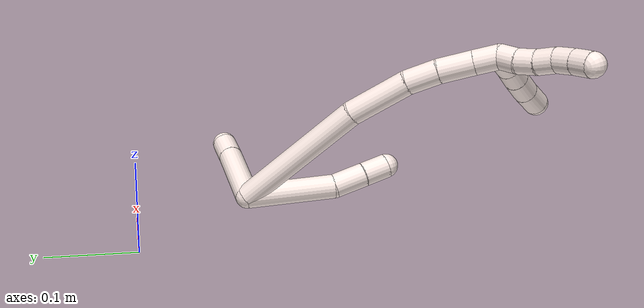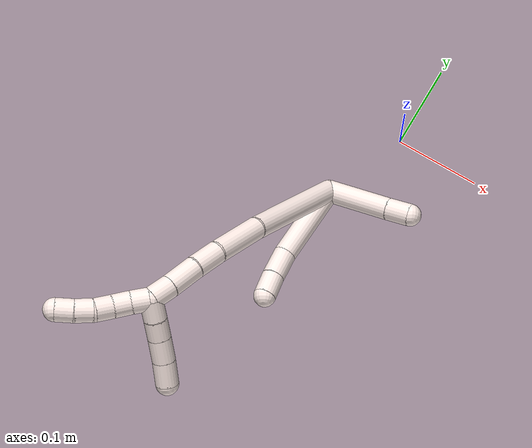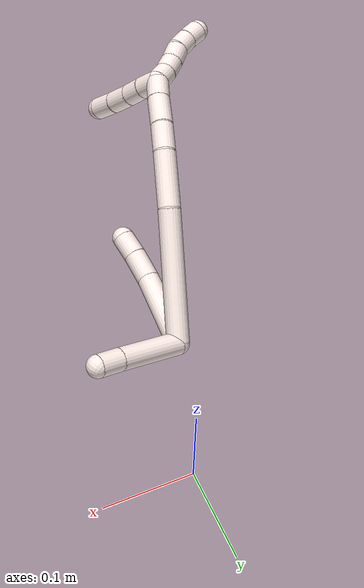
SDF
<sdf version="1.7">
 <world name="default">
  <model name="11">
   <static>0</static>
   <link name="11">
    <collision name="collision-cylinder-e_1_2_8">
     <pose>-0.020733 -0.009858 0.039236 0.246161 -0.47359 -0.059688</pose>
     <geometry><cylinder><radius>0.0125</radius><length>0.090918</length></cylinder></geometry>
     <surface>
      <friction><ode><mu>1.16</mu><mu2>1.16</mu2><slip1>0</slip1><slip2>0</slip2></ode></friction>
      <contact><ode><kp>1e+06</kp><kd>1</kd><max_vel>0</max_vel><min_depth>0.001</min_depth></ode></contact>
     </surface>
    </collision>
    <visual name="visual-cylinder-e_1_2_8">
     <pose>-0.020733 -0.009858 0.039236 0.246161 -0.47359 -0.059688</pose>
     <geometry><cylinder><radius>0.0125</radius><length>0.090918</length></cylinder></geometry>
     <material><ambient>1 0.933333 0.909804 1</ambient></material>
    </visual>
    <collision name="collision-cylinder-e_2_8_9">
     <pose>-0.048344 -0.019065 0.093536 -0.043249 -0.427924 0.009399</pose>
     <geometry><cylinder><radius>0.0125</radius><length>0.033145</length></cylinder></geometry>
     <surface>
      <friction><ode><mu>1.16</mu><mu2>1.16</mu2><slip1>0</slip1><slip2>0</slip2></ode></friction>
      <contact><ode><kp>1e+06</kp><kd>1</kd><max_vel>0</max_vel><min_depth>0.001</min_depth></ode></contact>
     </surface>
    </collision>
    <visual name="visual-cylinder-e_2_8_9">
     <pose>-0.048344 -0.019065 0.093536 -0.043249 -0.427924 0.009399</pose>
     <geometry><cylinder><radius>0.0125</radius><length>0.033145</length></cylinder></geometry>
     <material><ambient>1 0.933333 0.909804 1</ambient></material>
    </visual>
    <collision name="collision-cylinder-e_3_9_6">
     <pose>-0.059799 -0.017947 0.120725 -0.038417 -0.36076 0.007007</pose>
     <geometry><cylinder><radius>0.0125</radius><length>0.025937</length></cylinder></geometry>
     <surface>
      <friction><ode><mu>1.16</mu><mu2>1.16</mu2><slip1>0</slip1><slip2>0</slip2></ode></friction>
      <contact><ode><kp>1e+06</kp><kd>1</kd><max_vel>0</max_vel><min_depth>0.001</min_depth></ode></contact>
     </surface>
    </collision>
    <visual name="visual-cylinder-e_3_9_6">
     <pose>-0.059799 -0.017947 0.120725 -0.038417 -0.36076 0.007007</pose>
     <geometry><cylinder><radius>0.0125</radius><length>0.025937</length></cylinder></geometry>
     <material><ambient>1 0.933333 0.909804 1</ambient></material>
    </visual>
    <collision name="collision-cylinder-e_1_2_10">
     <pose>0.026069 0.022592 0.012756 -1.05681 0.787798 -0.476061</pose>
     <geometry><cylinder><radius>0.0125</radius><length>0.073559</length></cylinder></geometry>
     <surface>
      <friction><ode><mu>1.16</mu><mu2>1.16</mu2><slip1>0</slip1><slip2>0</slip2></ode></friction>
      <contact><ode><kp>1e+06</kp><kd>1</kd><max_vel>0</max_vel><min_depth>0.001</min_depth></ode></contact>
     </surface>
    </collision>
    <visual name="visual-cylinder-e_1_2_10">
     <pose>0.026069 0.022592 0.012756 -1.05681 0.787798 -0.476061</pose>
     <geometry><cylinder><radius>0.0125</radius><length>0.073559</length></cylinder></geometry>
     <material><ambient>1 0.933333 0.909804 1</ambient></material>
    </visual>
    <collision name="collision-cylinder-e_2_10_5">
     <pose>0.06169 0.053276 0.029765 -1.08677 0.807324 -0.504977</pose>
     <geometry><cylinder><radius>0.0125</radius><length>0.026441</length></cylinder></geometry>
     <surface>
      <friction><ode><mu>1.16</mu><mu2>1.16</mu2><slip1>0</slip1><slip2>0</slip2></ode></friction>
      <contact><ode><kp>1e+06</kp><kd>1</kd><max_vel>0</max_vel><min_depth>0.001</min_depth></ode></contact>
     </surface>
    </collision>
    <visual name="visual-cylinder-e_2_10_5">
     <pose>0.06169 0.053276 0.029765 -1.08677 0.807324 -0.504977</pose>
     <geometry><cylinder><radius>0.0125</radius><length>0.026441</length></cylinder></geometry>
     <material><ambient>1 0.933333 0.909804 1</ambient></material>
    </visual>
    <collision name="collision-cylinder-e_1_2_11">
     <pose>-0.054033 0.022515 0.041443 -0.497667 -0.853176 0.229957</pose>
     <geometry><cylinder><radius>0.0125</radius><length>0.143443</length></cylinder></geometry>
     <surface>
      <friction><ode><mu>1.16</mu><mu2>1.16</mu2><slip1>0</slip1><slip2>0</slip2></ode></friction>
      <contact><ode><kp>1e+06</kp><kd>1</kd><max_vel>0</max_vel><min_depth>0.001</min_depth></ode></contact>
     </surface>
    </collision>
    <visual name="visual-cylinder-e_1_2_11">
     <pose>-0.054033 0.022515 0.041443 -0.497667 -0.853176 0.229957</pose>
     <geometry><cylinder><radius>0.0125</radius><length>0.143443</length></cylinder></geometry>
     <material><ambient>1 0.933333 0.909804 1</ambient></material>
    </visual>
    <collision name="collision-cylinder-e_2_11_12">
     <pose>-0.132037 0.050134 0.10318 -0.246413 -0.853087 0.112433</pose>
     <geometry><cylinder><radius>0.0125</radius><length>0.063641</length></cylinder></geometry>
     <surface>
      <friction><ode><mu>1.16</mu><mu2>1.16</mu2><slip1>0</slip1><slip2>0</slip2></ode></friction>
      <contact><ode><kp>1e+06</kp><kd>1</kd><max_vel>0</max_vel><min_depth>0.001</min_depth></ode></contact>
     </surface>
    </collision>
    <visual name="visual-cylinder-e_2_11_12">
     <pose>-0.132037 0.050134 0.10318 -0.246413 -0.853087 0.112433</pose>
     <geometry><cylinder><radius>0.0125</radius><length>0.063641</length></cylinder></geometry>
     <material><ambient>1 0.933333 0.909804 1</ambient></material>
    </visual>
    <collision name="collision-cylinder-e_3_12_13">
     <pose>-0.167991 0.05527 0.13442 -0.002803 -0.830669 0.001236</pose>
     <geometry><cylinder><radius>0.0125</radius><length>0.032458</length></cylinder></geometry>
     <surface>
      <friction><ode><mu>1.16</mu><mu2>1.16</mu2><slip1>0</slip1><slip2>0</slip2></ode></friction>
      <contact><ode><kp>1e+06</kp><kd>1</kd><max_vel>0</max_vel><min_depth>0.001</min_depth></ode></contact>
     </surface>
    </collision>
    <visual name="visual-cylinder-e_3_12_13">
     <pose>-0.167991 0.05527 0.13442 -0.002803 -0.830669 0.001236</pose>
     <geometry><cylinder><radius>0.0125</radius><length>0.032458</length></cylinder></geometry>
     <material><ambient>1 0.933333 0.909804 1</ambient></material>
    </visual>
    <collision name="collision-cylinder-e_4_13_14">
     <pose>-0.192449 0.053546 0.157755 0.140643 -0.783826 -0.058206</pose>
     <geometry><cylinder><radius>0.0125</radius><length>0.035339</length></cylinder></geometry>
     <surface>
      <friction><ode><mu>1.16</mu><mu2>1.16</mu2><slip1>0</slip1><slip2>0</slip2></ode></friction>
      <contact><ode><kp>1e+06</kp><kd>1</kd><max_vel>0</max_vel><min_depth>0.001</min_depth></ode></contact>
     </surface>
    </collision>
    <visual name="visual-cylinder-e_4_13_14">
     <pose>-0.192449 0.053546 0.157755 0.140643 -0.783826 -0.058206</pose>
     <geometry><cylinder><radius>0.0125</radius><length>0.035339</length></cylinder></geometry>
     <material><ambient>1 0.933333 0.909804 1</ambient></material>
    </visual>
    <collision name="collision-cylinder-e_5_14_1">
     <pose>-0.214217 0.050356 0.17847 0.170859 -0.832973 -0.07573</pose>
     <geometry><cylinder><radius>0.0125</radius><length>0.025118</length></cylinder></geometry>
     <surface>
      <friction><ode><mu>1.16</mu><mu2>1.16</mu2><slip1>0</slip1><slip2>0</slip2></ode></friction>
      <contact><ode><kp>1e+06</kp><kd>1</kd><max_vel>0</max_vel><min_depth>0.001</min_depth></ode></contact>
     </surface>
    </collision>
    <visual name="visual-cylinder-e_5_14_1">
     <pose>-0.214217 0.050356 0.17847 0.170859 -0.832973 -0.07573</pose>
     <geometry><cylinder><radius>0.0125</radius><length>0.025118</length></cylinder></geometry>
     <material><ambient>1 0.933333 0.909804 1</ambient></material>
    </visual>
    <collision name="collision-cylinder-e_1_1_15">
     <pose>-0.23192 0.04391 0.188837 1.18382 -0.999266 -0.703431</pose>
     <geometry><cylinder><radius>0.0125</radius><length>0.02</length></cylinder></geometry>
     <surface>
      <friction><ode><mu>1.16</mu><mu2>1.16</mu2><slip1>0</slip1><slip2>0</slip2></ode></friction>
      <contact><ode><kp>1e+06</kp><kd>1</kd><max_vel>0</max_vel><min_depth>0.001</min_depth></ode></contact>
     </surface>
    </collision>
    <visual name="visual-cylinder-e_1_1_15">
     <pose>-0.23192 0.04391 0.188837 1.18382 -0.999266 -0.703431</pose>
     <geometry><cylinder><radius>0.0125</radius><length>0.02</length></cylinder></geometry>
     <material><ambient>1 0.933333 0.909804 1</ambient></material>
    </visual>
    <collision name="collision-cylinder-e_2_15_16">
     <pose>-0.249193 0.03538 0.193891 0.863005 -1.08901 -0.543847</pose>
     <geometry><cylinder><radius>0.0125</radius><length>0.02</length></cylinder></geometry>
     <surface>
      <friction><ode><mu>1.16</mu><mu2>1.16</mu2><slip1>0</slip1><slip2>0</slip2></ode></friction>
      <contact><ode><kp>1e+06</kp><kd>1</kd><max_vel>0</max_vel><min_depth>0.001</min_depth></ode></contact>
     </surface>
    </collision>
    <visual name="visual-cylinder-e_2_15_16">
     <pose>-0.249193 0.03538 0.193891 0.863005 -1.08901 -0.543847</pose>
     <geometry><cylinder><radius>0.0125</radius><length>0.02</length></cylinder></geometry>
     <material><ambient>1 0.933333 0.909804 1</ambient></material>
    </visual>
    <collision name="collision-cylinder-e_3_16_17">
     <pose>-0.267274 0.029761 0.200158 0.572737 -1.1731 -0.386499</pose>
     <geometry><cylinder><radius>0.0125</radius><length>0.02</length></cylinder></geometry>
     <surface>
      <friction><ode><mu>1.16</mu><mu2>1.16</mu2><slip1>0</slip1><slip2>0</slip2></ode></friction>
      <contact><ode><kp>1e+06</kp><kd>1</kd><max_vel>0</max_vel><min_depth>0.001</min_depth></ode></contact>
     </surface>
    </collision>
    <visual name="visual-cylinder-e_3_16_17">
     <pose>-0.267274 0.029761 0.200158 0.572737 -1.1731 -0.386499</pose>
     <geometry><cylinder><radius>0.0125</radius><length>0.02</length></cylinder></geometry>
     <material><ambient>1 0.933333 0.909804 1</ambient></material>
    </visual>
    <collision name="collision-cylinder-e_4_17_18">
     <pose>-0.285777 0.024114 0.204523 1.26759 -1.18996 -0.923141</pose>
     <geometry><cylinder><radius>0.0125</radius><length>0.02</length></cylinder></geometry>
     <surface>
      <friction><ode><mu>1.16</mu><mu2>1.16</mu2><slip1>0</slip1><slip2>0</slip2></ode></friction>
      <contact><ode><kp>1e+06</kp><kd>1</kd><max_vel>0</max_vel><min_depth>0.001</min_depth></ode></contact>
     </surface>
    </collision>
    <visual name="visual-cylinder-e_4_17_18">
     <pose>-0.285777 0.024114 0.204523 1.26759 -1.18996 -0.923141</pose>
     <geometry><cylinder><radius>0.0125</radius><length>0.02</length></cylinder></geometry>
     <material><ambient>1 0.933333 0.909804 1</ambient></material>
    </visual>
    <collision name="collision-cylinder-e_5_18_4">
     <pose>-0.304307 0.016759 0.205697 1.5541 -1.18003 -1.16464</pose>
     <geometry><cylinder><radius>0.0125</radius><length>0.02</length></cylinder></geometry>
     <surface>
      <friction><ode><mu>1.16</mu><mu2>1.16</mu2><slip1>0</slip1><slip2>0</slip2></ode></friction>
      <contact><ode><kp>1e+06</kp><kd>1</kd><max_vel>0</max_vel><min_depth>0.001</min_depth></ode></contact>
     </surface>
    </collision>
    <visual name="visual-cylinder-e_5_18_4">
     <pose>-0.304307 0.016759 0.205697 1.5541 -1.18003 -1.16464</pose>
     <geometry><cylinder><radius>0.0125</radius><length>0.02</length></cylinder></geometry>
     <material><ambient>1 0.933333 0.909804 1</ambient></material>
    </visual>
    <collision name="collision-cylinder-e_1_1_19">
     <pose>-0.217822 0.04277 0.194825 0.653593 0.512307 0.177082</pose>
     <geometry><cylinder><radius>0.0125</radius><length>0.023206</length></cylinder></geometry>
     <surface>
      <friction><ode><mu>1.16</mu><mu2>1.16</mu2><slip1>0</slip1><slip2>0</slip2></ode></friction>
      <contact><ode><kp>1e+06</kp><kd>1</kd><max_vel>0</max_vel><min_depth>0.001</min_depth></ode></contact>
     </surface>
    </collision>
    <visual name="visual-cylinder-e_1_1_19">
     <pose>-0.217822 0.04277 0.194825 0.653593 0.512307 0.177082</pose>
     <geometry><cylinder><radius>0.0125</radius><length>0.023206</length></cylinder></geometry>
     <material><ambient>1 0.933333 0.909804 1</ambient></material>
    </visual>
    <collision name="collision-cylinder-e_2_19_20">
     <pose>-0.206609 0.030259 0.210128 0.718594 0.519442 0.198952</pose>
     <geometry><cylinder><radius>0.0125</radius><length>0.022264</length></cylinder></geometry>
     <surface>
      <friction><ode><mu>1.16</mu><mu2>1.16</mu2><slip1>0</slip1><slip2>0</slip2></ode></friction>
      <contact><ode><kp>1e+06</kp><kd>1</kd><max_vel>0</max_vel><min_depth>0.001</min_depth></ode></contact>
     </surface>
    </collision>
    <visual name="visual-cylinder-e_2_19_20">
     <pose>-0.206609 0.030259 0.210128 0.718594 0.519442 0.198952</pose>
     <geometry><cylinder><radius>0.0125</radius><length>0.022264</length></cylinder></geometry>
     <material><ambient>1 0.933333 0.909804 1</ambient></material>
    </visual>
    <collision name="collision-cylinder-e_3_20_21">
     <pose>-0.194664 0.016528 0.226621 0.674359 0.498121 0.177857</pose>
     <geometry><cylinder><radius>0.0125</radius><length>0.026869</length></cylinder></geometry>
     <surface>
      <friction><ode><mu>1.16</mu><mu2>1.16</mu2><slip1>0</slip1><slip2>0</slip2></ode></friction>
      <contact><ode><kp>1e+06</kp><kd>1</kd><max_vel>0</max_vel><min_depth>0.001</min_depth></ode></contact>
     </surface>
    </collision>
    <visual name="visual-cylinder-e_3_20_21">
     <pose>-0.194664 0.016528 0.226621 0.674359 0.498121 0.177857</pose>
     <geometry><cylinder><radius>0.0125</radius><length>0.026869</length></cylinder></geometry>
     <material><ambient>1 0.933333 0.909804 1</ambient></material>
    </visual>
    <collision name="collision-cylinder-e_4_21_3">
     <pose>-0.182307 0.001579 0.245768 0.652042 0.443763 0.152246</pose>
     <geometry><cylinder><radius>0.0125</radius><length>0.027661</length></cylinder></geometry>
     <surface>
      <friction><ode><mu>1.16</mu><mu2>1.16</mu2><slip1>0</slip1><slip2>0</slip2></ode></friction>
      <contact><ode><kp>1e+06</kp><kd>1</kd><max_vel>0</max_vel><min_depth>0.001</min_depth></ode></contact>
     </surface>
    </collision>
    <visual name="visual-cylinder-e_4_21_3">
     <pose>-0.182307 0.001579 0.245768 0.652042 0.443763 0.152246</pose>
     <geometry><cylinder><radius>0.0125</radius><length>0.027661</length></cylinder></geometry>
     <material><ambient>1 0.933333 0.909804 1</ambient></material>
    </visual>
    <collision name="collision-sphere-3">
     <pose>-0.176369 -0.006001 0.255696 0 -0 0</pose>
     <geometry><sphere><radius>0.0125</radius></sphere></geometry>
     <surface>
      <friction><ode><mu>1.16</mu><mu2>1.16</mu2><slip1>0</slip1><slip2>0</slip2></ode></friction>
      <contact><ode><kp>1e+06</kp><kd>1</kd><max_vel>0</max_vel><min_depth>0.001</min_depth></ode></contact>
     </surface>
    </collision>
    <visual name="visual-sphere-3">
     <pose>-0.176369 -0.006001 0.255696 0 -0 0</pose>
     <geometry><sphere><radius>0.0125</radius></sphere></geometry>
     <material><ambient>1 0.933333 0.909804 1</ambient></material>
    </visual>
    <collision name="collision-sphere-21">
     <pose>-0.188245 0.009159 0.235839 0 -0 0</pose>
     <geometry><sphere><radius>0.0125</radius></sphere></geometry>
     <surface>
      <friction><ode><mu>1.16</mu><mu2>1.16</mu2><slip1>0</slip1><slip2>0</slip2></ode></friction>
      <contact><ode><kp>1e+06</kp><kd>1</kd><max_vel>0</max_vel><min_depth>0.001</min_depth></ode></contact>
     </surface>
    </collision>
    <visual name="visual-sphere-21">
     <pose>-0.188245 0.009159 0.235839 0 -0 0</pose>
     <geometry><sphere><radius>0.0125</radius></sphere></geometry>
     <material><ambient>1 0.933333 0.909804 1</ambient></material>
    </visual>
    <collision name="collision-sphere-20">
     <pose>-0.201083 0.023897 0.217402 0 -0 0</pose>
     <geometry><sphere><radius>0.0125</radius></sphere></geometry>
     <surface>
      <friction><ode><mu>1.16</mu><mu2>1.16</mu2><slip1>0</slip1><slip2>0</slip2></ode></friction>
      <contact><ode><kp>1e+06</kp><kd>1</kd><max_vel>0</max_vel><min_depth>0.001</min_depth></ode></contact>
     </surface>
    </collision>
    <visual name="visual-sphere-20">
     <pose>-0.201083 0.023897 0.217402 0 -0 0</pose>
     <geometry><sphere><radius>0.0125</radius></sphere></geometry>
     <material><ambient>1 0.933333 0.909804 1</ambient></material>
    </visual>
    <collision name="collision-sphere-19">
     <pose>-0.212135 0.036621 0.202853 0 -0 0</pose>
     <geometry><sphere><radius>0.0125</radius></sphere></geometry>
     <surface>
      <friction><ode><mu>1.16</mu><mu2>1.16</mu2><slip1>0</slip1><slip2>0</slip2></ode></friction>
      <contact><ode><kp>1e+06</kp><kd>1</kd><max_vel>0</max_vel><min_depth>0.001</min_depth></ode></contact>
     </surface>
    </collision>
    <visual name="visual-sphere-19">
     <pose>-0.212135 0.036621 0.202853 0 -0 0</pose>
     <geometry><sphere><radius>0.0125</radius></sphere></geometry>
     <material><ambient>1 0.933333 0.909804 1</ambient></material>
    </visual>
    <collision name="collision-sphere-5">
     <pose>0.071241 0.061367 0.034019 0 -0 0</pose>
     <geometry><sphere><radius>0.0125</radius></sphere></geometry>
     <surface>
      <friction><ode><mu>1.16</mu><mu2>1.16</mu2><slip1>0</slip1><slip2>0</slip2></ode></friction>
      <contact><ode><kp>1e+06</kp><kd>1</kd><max_vel>0</max_vel><min_depth>0.001</min_depth></ode></contact>
     </surface>
    </collision>
    <visual name="visual-sphere-5">
     <pose>0.071241 0.061367 0.034019 0 -0 0</pose>
     <geometry><sphere><radius>0.0125</radius></sphere></geometry>
     <material><ambient>1 0.933333 0.909804 1</ambient></material>
    </visual>
    <collision name="collision-sphere-10">
     <pose>0.052139 0.045185 0.025511 0 -0 0</pose>
     <geometry><sphere><radius>0.0125</radius></sphere></geometry>
     <surface>
      <friction><ode><mu>1.16</mu><mu2>1.16</mu2><slip1>0</slip1><slip2>0</slip2></ode></friction>
      <contact><ode><kp>1e+06</kp><kd>1</kd><max_vel>0</max_vel><min_depth>0.001</min_depth></ode></contact>
     </surface>
    </collision>
    <visual name="visual-sphere-10">
     <pose>0.052139 0.045185 0.025511 0 -0 0</pose>
     <geometry><sphere><radius>0.0125</radius></sphere></geometry>
     <material><ambient>1 0.933333 0.909804 1</ambient></material>
    </visual>
    <collision name="collision-sphere-6">
     <pose>-0.064376 -0.017481 0.13285 0 -0 0</pose>
     <geometry><sphere><radius>0.0125</radius></sphere></geometry>
     <surface>
      <friction><ode><mu>1.16</mu><mu2>1.16</mu2><slip1>0</slip1><slip2>0</slip2></ode></friction>
      <contact><ode><kp>1e+06</kp><kd>1</kd><max_vel>0</max_vel><min_depth>0.001</min_depth></ode></contact>
     </surface>
    </collision>
    <visual name="visual-sphere-6">
     <pose>-0.064376 -0.017481 0.13285 0 -0 0</pose>
     <geometry><sphere><radius>0.0125</radius></sphere></geometry>
     <material><ambient>1 0.933333 0.909804 1</ambient></material>
    </visual>
    <collision name="collision-sphere-9">
     <pose>-0.055221 -0.018413 0.1086 0 -0 0</pose>
     <geometry><sphere><radius>0.0125</radius></sphere></geometry>
     <surface>
      <friction><ode><mu>1.16</mu><mu2>1.16</mu2><slip1>0</slip1><slip2>0</slip2></ode></friction>
      <contact><ode><kp>1e+06</kp><kd>1</kd><max_vel>0</max_vel><min_depth>0.001</min_depth></ode></contact>
     </surface>
    </collision>
    <visual name="visual-sphere-9">
     <pose>-0.055221 -0.018413 0.1086 0 -0 0</pose>
     <geometry><sphere><radius>0.0125</radius></sphere></geometry>
     <material><ambient>1 0.933333 0.909804 1</ambient></material>
    </visual>
    <collision name="collision-sphere-2">
     <geometry><sphere><radius>0.0125</radius></sphere></geometry>
     <surface>
      <friction><ode><mu>1.16</mu><mu2>1.16</mu2><slip1>0</slip1><slip2>0</slip2></ode></friction>
      <contact><ode><kp>1e+06</kp><kd>1</kd><max_vel>0</max_vel><min_depth>0.001</min_depth></ode></contact>
     </surface>
    </collision>
    <visual name="visual-sphere-2">
     <geometry><sphere><radius>0.0125</radius></sphere></geometry>
     <material><ambient>1 0.933333 0.909804 1</ambient></material>
    </visual>
    <collision name="collision-sphere-8">
     <pose>-0.041466 -0.019717 0.078472 0 -0 0</pose>
     <geometry><sphere><radius>0.0125</radius></sphere></geometry>
     <surface>
      <friction><ode><mu>1.16</mu><mu2>1.16</mu2><slip1>0</slip1><slip2>0</slip2></ode></friction>
      <contact><ode><kp>1e+06</kp><kd>1</kd><max_vel>0</max_vel><min_depth>0.001</min_depth></ode></contact>
     </surface>
    </collision>
    <visual name="visual-sphere-8">
     <pose>-0.041466 -0.019717 0.078472 0 -0 0</pose>
     <geometry><sphere><radius>0.0125</radius></sphere></geometry>
     <material><ambient>1 0.933333 0.909804 1</ambient></material>
    </visual>
    <collision name="collision-sphere-11">
     <pose>-0.108066 0.04503 0.082885 0 -0 0</pose>
     <geometry><sphere><radius>0.0125</radius></sphere></geometry>
     <surface>
      <friction><ode><mu>1.16</mu><mu2>1.16</mu2><slip1>0</slip1><slip2>0</slip2></ode></friction>
      <contact><ode><kp>1e+06</kp><kd>1</kd><max_vel>0</max_vel><min_depth>0.001</min_depth></ode></contact>
     </surface>
    </collision>
    <visual name="visual-sphere-11">
     <pose>-0.108066 0.04503 0.082885 0 -0 0</pose>
     <geometry><sphere><radius>0.0125</radius></sphere></geometry>
     <material><ambient>1 0.933333 0.909804 1</ambient></material>
    </visual>
    <collision name="collision-sphere-12">
     <pose>-0.156008 0.055239 0.123475 0 -0 0</pose>
     <geometry><sphere><radius>0.0125</radius></sphere></geometry>
     <surface>
      <friction><ode><mu>1.16</mu><mu2>1.16</mu2><slip1>0</slip1><slip2>0</slip2></ode></friction>
      <contact><ode><kp>1e+06</kp><kd>1</kd><max_vel>0</max_vel><min_depth>0.001</min_depth></ode></contact>
     </surface>
    </collision>
    <visual name="visual-sphere-12">
     <pose>-0.156008 0.055239 0.123475 0 -0 0</pose>
     <geometry><sphere><radius>0.0125</radius></sphere></geometry>
     <material><ambient>1 0.933333 0.909804 1</ambient></material>
    </visual>
    <collision name="collision-sphere-13">
     <pose>-0.179974 0.0553 0.145364 0 -0 0</pose>
     <geometry><sphere><radius>0.0125</radius></sphere></geometry>
     <surface>
      <friction><ode><mu>1.16</mu><mu2>1.16</mu2><slip1>0</slip1><slip2>0</slip2></ode></friction>
      <contact><ode><kp>1e+06</kp><kd>1</kd><max_vel>0</max_vel><min_depth>0.001</min_depth></ode></contact>
     </surface>
    </collision>
    <visual name="visual-sphere-13">
     <pose>-0.179974 0.0553 0.145364 0 -0 0</pose>
     <geometry><sphere><radius>0.0125</radius></sphere></geometry>
     <material><ambient>1 0.933333 0.909804 1</ambient></material>
    </visual>
    <collision name="collision-sphere-14">
     <pose>-0.204924 0.051792 0.170145 0 -0 0</pose>
     <geometry><sphere><radius>0.0125</radius></sphere></geometry>
     <surface>
      <friction><ode><mu>1.16</mu><mu2>1.16</mu2><slip1>0</slip1><slip2>0</slip2></ode></friction>
      <contact><ode><kp>1e+06</kp><kd>1</kd><max_vel>0</max_vel><min_depth>0.001</min_depth></ode></contact>
     </surface>
    </collision>
    <visual name="visual-sphere-14">
     <pose>-0.204924 0.051792 0.170145 0 -0 0</pose>
     <geometry><sphere><radius>0.0125</radius></sphere></geometry>
     <material><ambient>1 0.933333 0.909804 1</ambient></material>
    </visual>
    <collision name="collision-sphere-1">
     <pose>-0.22351 0.048919 0.186796 0 -0 0</pose>
     <geometry><sphere><radius>0.0125</radius></sphere></geometry>
     <surface>
      <friction><ode><mu>1.16</mu><mu2>1.16</mu2><slip1>0</slip1><slip2>0</slip2></ode></friction>
      <contact><ode><kp>1e+06</kp><kd>1</kd><max_vel>0</max_vel><min_depth>0.001</min_depth></ode></contact>
     </surface>
    </collision>
    <visual name="visual-sphere-1">
     <pose>-0.22351 0.048919 0.186796 0 -0 0</pose>
     <geometry><sphere><radius>0.0125</radius></sphere></geometry>
     <material><ambient>1 0.933333 0.909804 1</ambient></material>
    </visual>
    <collision name="collision-sphere-18">
     <pose>-0.295061 0.020567 0.205633 0 -0 0</pose>
     <geometry><sphere><radius>0.0125</radius></sphere></geometry>
     <surface>
      <friction><ode><mu>1.16</mu><mu2>1.16</mu2><slip1>0</slip1><slip2>0</slip2></ode></friction>
      <contact><ode><kp>1e+06</kp><kd>1</kd><max_vel>0</max_vel><min_depth>0.001</min_depth></ode></contact>
     </surface>
    </collision>
    <visual name="visual-sphere-18">
     <pose>-0.295061 0.020567 0.205633 0 -0 0</pose>
     <geometry><sphere><radius>0.0125</radius></sphere></geometry>
     <material><ambient>1 0.933333 0.909804 1</ambient></material>
    </visual>
    <collision name="collision-sphere-15">
     <pose>-0.240331 0.038901 0.190878 0 -0 0</pose>
     <geometry><sphere><radius>0.0125</radius></sphere></geometry>
     <surface>
      <friction><ode><mu>1.16</mu><mu2>1.16</mu2><slip1>0</slip1><slip2>0</slip2></ode></friction>
      <contact><ode><kp>1e+06</kp><kd>1</kd><max_vel>0</max_vel><min_depth>0.001</min_depth></ode></contact>
     </surface>
    </collision>
    <visual name="visual-sphere-15">
     <pose>-0.240331 0.038901 0.190878 0 -0 0</pose>
     <geometry><sphere><radius>0.0125</radius></sphere></geometry>
     <material><ambient>1 0.933333 0.909804 1</ambient></material>
    </visual>
    <collision name="collision-sphere-16">
     <pose>-0.258055 0.03186 0.196904 0 -0 0</pose>
     <geometry><sphere><radius>0.0125</radius></sphere></geometry>
     <surface>
      <friction><ode><mu>1.16</mu><mu2>1.16</mu2><slip1>0</slip1><slip2>0</slip2></ode></friction>
      <contact><ode><kp>1e+06</kp><kd>1</kd><max_vel>0</max_vel><min_depth>0.001</min_depth></ode></contact>
     </surface>
    </collision>
    <visual name="visual-sphere-16">
     <pose>-0.258055 0.03186 0.196904 0 -0 0</pose>
     <geometry><sphere><radius>0.0125</radius></sphere></geometry>
     <material><ambient>1 0.933333 0.909804 1</ambient></material>
    </visual>
    <collision name="collision-sphere-17">
     <pose>-0.276494 0.027662 0.203413 0 -0 0</pose>
     <geometry><sphere><radius>0.0125</radius></sphere></geometry>
     <surface>
      <friction><ode><mu>1.16</mu><mu2>1.16</mu2><slip1>0</slip1><slip2>0</slip2></ode></friction>
      <contact><ode><kp>1e+06</kp><kd>1</kd><max_vel>0</max_vel><min_depth>0.001</min_depth></ode></contact>
     </surface>
    </collision>
    <visual name="visual-sphere-17">
     <pose>-0.276494 0.027662 0.203413 0 -0 0</pose>
     <geometry><sphere><radius>0.0125</radius></sphere></geometry>
     <material><ambient>1 0.933333 0.909804 1</ambient></material>
    </visual>
    <collision name="collision-sphere-4">
     <pose>-0.313553 0.01295 0.20576 0 -0 0</pose>
     <geometry><sphere><radius>0.0125</radius></sphere></geometry>
     <surface>
      <friction><ode><mu>1.16</mu><mu2>1.16</mu2><slip1>0</slip1><slip2>0</slip2></ode></friction>
      <contact><ode><kp>1e+06</kp><kd>1</kd><max_vel>0</max_vel><min_depth>0.001</min_depth></ode></contact>
     </surface>
    </collision>
    <visual name="visual-sphere-4">
     <pose>-0.313553 0.01295 0.20576 0 -0 0</pose>
     <geometry><sphere><radius>0.0125</radius></sphere></geometry>
     <material><ambient>1 0.933333 0.909804 1</ambient></material>
    </visual>
    <inertial>
     <pose>-0.1093 0.023467 0.107206 0 -0 0</pose>
     <mass>0.75</mass>
     <inertia>
      <ixx>0.000286</ixx>
      <ixy>0</ixy>
      <ixz>0</ixz>
      <iyy>0.000407</iyy>
      <iyz>0</iyz>
      <izz>0.000174</izz>
     </inertia>
    </inertial>
   </link>
   <pose>-0.032491 -0.112832 0.069535 1.4673 0.452516 0.437812</pose>
  </model>
 </world>
</sdf>
